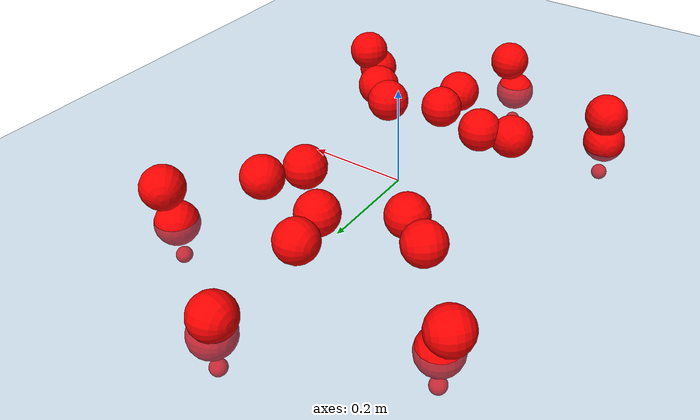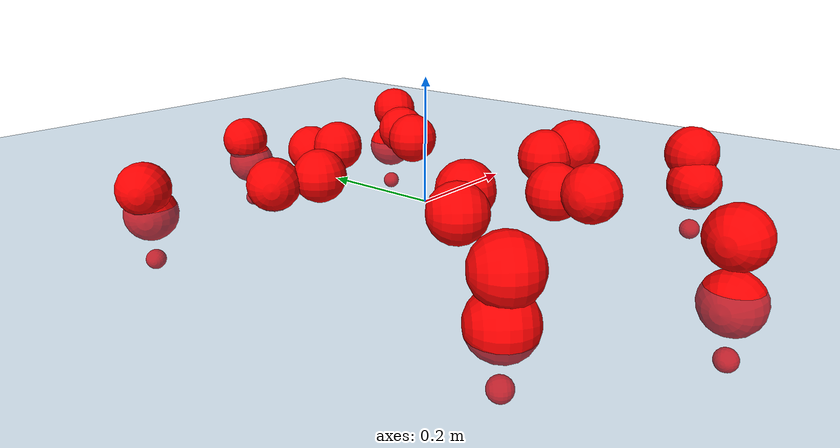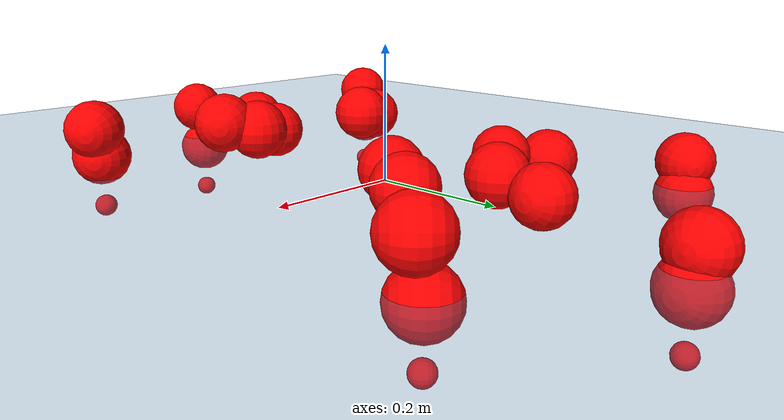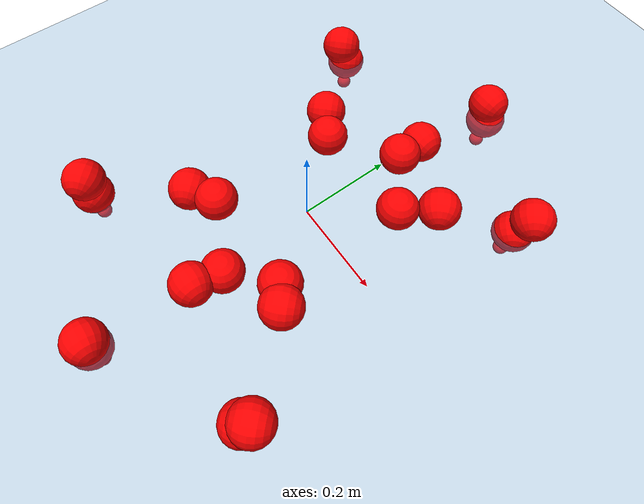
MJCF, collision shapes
<mujoco model="Golem">
  <compiler angle="radian" assetdir="assets" balanceinertia="true" inertiafromgeom="false"/>

  <option timestep="0.005" density="1.2" viscosity="2e-05"/>

  <size nkey="1"/>

  <visual>
    <quality shadowsize="8192"/>
    <map shadowclip="0.5"/>
  </visual>

  <default>
    <default class="/">
      <joint armature="0.01" damping="0.01" frictionloss="0.01"/>
      <geom contype="0" conaffinity="0" group="1" solref="-1000 -80"/>
      <site size="0.01 0.005 0.005" group="5"/>
      <general forcelimited="true" biastype="affine" gainprm="25" biasprm="0 -25 -0.5"/>
      <default class="visual">
        <geom type="mesh" group="2"/>
      </default>
      <default class="collision">
        <geom group="3"/>
      </default>
      <default class="foot">
        <geom size="0.01 0 0" condim="6" group="4" priority="1" solimp="0.015 1 0.01"/>
      </default>
      <default class="reward_collision_sphere">
        <geom group="5" rgba="1 0 0 1"/>
      </default>
    </default>
  </default>

  <asset>
    <texture type="skybox" colorspace="auto" name="//unnamed_texture_0" builtin="gradient" rgb1="0.95 0.95 0.95" rgb2="0.95 0.95 0.95" width="100" height="600"/>
    <texture type="2d" colorspace="auto" name="texplane" builtin="checker" rgb1="0.345 0.575 0.748" rgb2="0.345 0.575 0.748" markrgb="1 1 1" width="512" height="512"/>
    <material name="MatPlane" class="/" texture="texplane" texuniform="true" texrepeat="2 2" specular="0.9"/>
    <mesh name="body" class="/" file="body.stl" scale="0.001 0.001 0.001"/>
    <mesh name="coxa" class="/" file="coxa.stl" scale="0.001 0.001 0.001"/>
    <mesh name="femur" class="/" file="femur.stl" scale="0.001 0.001 0.001"/>
    <mesh name="tibia" class="/" file="tibia.stl" scale="0.001 0.001 0.001"/>
    <mesh name="tarsus" class="/" file="tarsus.stl" scale="0.001 0.001 0.001"/>
  </asset>

  <worldbody>
    <geom name="floor" class="/" size="100 100 0.125" type="plane" group="0" material="MatPlane"/>
    <light name="toplight_shadow" class="/" pos="0 0 5" dir="0.0990148 0.0990148 -0.990148" type="directional" ambient="0.04 0.04 0.04" diffuse="0.55 0.55 0.55" specular="0.12 0.12 0.12"/>
    <light name="toplight_fill" class="/" pos="0 0 5" dir="0.0990148 0.0990148 -0.990148" type="directional" castshadow="false" ambient="0.04 0.04 0.04" diffuse="0.3 0.3 0.3" specular="0.08 0.08 0.08"/>
    <body name="trunk" pos="0.0138814 -0.00205032 0.011946" quat="0.999994 -0.0035337 0.00027969 0.000294546">
      <inertial pos="0.00714203 0.00896358 0.0173906" quat="0.996099 -0.0764351 -0.0231783 0.0375093" mass="5.50336" diaginertia="0.00249407 0.177897 0.00219826"/>
      <joint name="//unnamed_joint_0" type="free"/>
      <geom name="//unnamed_geom_1" class="/" pos="0 0 0.045436" quat="1 0 0 0" type="mesh" rgba="0.9 0.9 0.9 1" mesh="body"/>
      <site name="imu" class="/" pos="0.0373425 0.04828 0.128601" size="0.0107091"/>
      <camera name="track" class="/" pos="0 -3.55929 0" quat="0.707107 0.707107 0 0" mode="trackcom"/>
      <camera name="ego_camera" class="/" pos="0.0940102 0 0.0709937" quat="-0.5 -0.5 0.5 0.5"/>
      <body name="coxa_RR" pos="-0.125062 -0.16257 0.0592011" quat="0.384351 0.000343257 0.000595548 -0.923187">
        <inertial pos="0.00971582 -0.00293122 0.0110615" quat="0.997777 -0.0302376 0.0535892 -0.0256069" mass="0.284119" diaginertia="0.00186323 0.22327 0.00209321"/>
        <joint name="coxa_joint_RR" class="/" pos="0 0 0" axis="-0.0538813 0.031462 -0.998052" stiffness="0.0130471" range="-2.91925 2.78711" armature="0.0172418" damping="0.0374992" frictionloss="0.0174171"/>
        <geom name="//unnamed_geom_2" class="/" type="mesh" rgba="0.2 0.2 0.2 1" mesh="coxa"/>
        <geom name="//unnamed_geom_3" class="reward_collision_sphere" size="0.0428365" pos="-0.0216947 0 0"/>
        <body name="femur_RR" pos="0.0390523 -0.0194399 -0.0117293" quat="0.49767 -0.500916 0.499263 0.50214">
          <inertial pos="0.0103481 -0.0173765 -0.0189315" quat="0.99926 -0.00621325 -0.0373698 -0.00659508" mass="0.244723" diaginertia="0.00152858 0.148256 0.00133423"/>
          <joint name="femur_joint_RR" class="/" pos="0 0 0" axis="0.0259409 0.0370609 -0.998976" stiffness="0.039526" range="-3.28662 3.1685" armature="0.0057588" damping="0" frictionloss="0.000460683"/>
          <geom name="//unnamed_geom_4" class="/" type="mesh" rgba="0.9 0.9 0.9 1" mesh="femur"/>
          <geom name="//unnamed_geom_5" class="reward_collision_sphere" size="0.0428365"/>
          <body name="tibia_RR" pos="-0.0110416 -0.209714 0.0184468" quat="-0.0013585 0.999996 -0.00167039 0.00155952">
            <inertial pos="-0.0122426 0.01795 -0.00476471" quat="0.99957 0.0100612 0.0274606 -0.00228949" mass="0.20505" diaginertia="0.00179394 0.164645 0.00173762"/>
            <joint name="tibia_joint_RR" class="/" pos="0 0 0" axis="-0.00305578 0.00677337 0.999972" range="-3.13083 3.1709" armature="0.00804172" damping="0" frictionloss="0.0178108"/>
            <geom name="//unnamed_geom_6" class="/" type="mesh" rgba="0.2 0.2 0.2 1" mesh="tibia"/>
            <geom name="//unnamed_geom_7" class="reward_collision_sphere" size="0.0428365"/>
            <body name="tarsus_RR" pos="0.0605839 0.00232934 0.00382715" quat="0.999996 0.00212094 0.00063906 0.00195134">
              <inertial pos="0.0563404 -0.00541617 0.00599245" quat="0.493109 0.55082 0.469777 0.482443" mass="0.187914" diaginertia="0.00145358 0.185179 0.00153581"/>
              <joint name="tarsus_joint_RR" class="/" pos="0 0 0" axis="0.0368938 0.0286935 0.998907" range="-2.7628 2.75176" armature="0.00768554" damping="0" frictionloss="0.00851001"/>
              <geom name="//unnamed_geom_8" class="/" type="mesh" rgba="0.9 0.9 0.9 1" mesh="tarsus"/>
              <geom name="foot_1" class="foot" size="0.00529831" pos="0.0809934 0 0" quat="0 -0.707107 0 0.707107"/>
              <geom name="//unnamed_geom_10" class="reward_collision_sphere" size="0.0428365"/>
              <geom name="//unnamed_geom_11" class="reward_collision_sphere" size="0.0160637" pos="0.0777392 0 0"/>
              <site name="foot_1" class="foot" pos="0.0809934 0 0" quat="0 -0.707107 0 0.707107" size="0.0107091"/>
            </body>
          </body>
        </body>
      </body>
      <body name="coxa_RM" pos="0.0177421 -0.235483 0.0391157" quat="0.707731 -0.00235472 -0.00504564 -0.706461">
        <inertial pos="-0.00506967 0.0128413 0.000619972" quat="0.995753 -0.0521614 0.0746084 0.0137419" mass="0.180517" diaginertia="0.00141567 0.171496 0.00152227"/>
        <joint name="coxa_joint_RM" class="/" pos="0 0 0" axis="0.0327258 0.0317086 -0.998961" range="-2.9846 2.99721" armature="0.0093339" damping="0" frictionloss="0.0141136"/>
        <geom name="//unnamed_geom_12" class="/" type="mesh" rgba="0.2 0.2 0.2 1" mesh="coxa"/>
        <geom name="//unnamed_geom_13" class="reward_collision_sphere" size="0.0428365" pos="-0.0216947 0 0"/>
        <body name="femur_RM" pos="0.04009 -0.00764936 0.0102411" quat="0.505327 -0.502523 0.498071 0.494004">
          <inertial pos="0.0177893 0.0124912 0.0192085" quat="0.99954 0.0211113 0.0172537 0.0132967" mass="0.193969" diaginertia="0.00211215 0.179408 0.00153125"/>
          <joint name="femur_joint_RM" class="/" pos="0 0 0" axis="0.027062 -0.0542125 -0.998163" range="-3.30949 2.78992" armature="0.0058012" damping="0.0269922" frictionloss="0.0197266"/>
          <geom name="//unnamed_geom_14" class="/" type="mesh" rgba="0.9 0.9 0.9 1" mesh="femur"/>
          <geom name="//unnamed_geom_15" class="reward_collision_sphere" size="0.0428365"/>
          <body name="tibia_RM" pos="0.0148304 -0.205016 -0.018809" quat="-0.00347328 0.999983 0.002934 0.00366799">
            <inertial pos="-0.00673962 -0.00892015 0.00587777" quat="0.999985 -0.00129988 -0.00259306 0.00456832" mass="0.199523" diaginertia="0.00142134 0.130879 0.00144513"/>
            <joint name="tibia_joint_RM" class="/" pos="0 0 0" axis="0.0849922 0.0228387 0.99612" range="-3.34482 3.46622" armature="0.0138856" damping="0.06794" frictionloss="0.00473903"/>
            <geom name="//unnamed_geom_16" class="/" type="mesh" rgba="0.2 0.2 0.2 1" mesh="tibia"/>
            <geom name="//unnamed_geom_17" class="reward_collision_sphere" size="0.0428365"/>
            <body name="tarsus_RM" pos="0.078128 0.00592208 0.0173341" quat="0.999994 0.00100936 -0.0019928 -0.00246911">
              <inertial pos="0.0518097 -0.002959 -0.0139376" quat="0.517023 0.52435 0.43461 0.518514" mass="0.211512" diaginertia="0.0014509 0.155092 0.00195471"/>
              <joint name="tarsus_joint_RM" class="/" pos="0 0 0" axis="0.0385264 -0.029563 0.99882" stiffness="0.00785993" range="-2.80912 3.50211" armature="0.0115592" damping="0.00561529" frictionloss="0.0152325"/>
              <geom name="//unnamed_geom_18" class="/" type="mesh" rgba="0.9 0.9 0.9 1" mesh="tarsus"/>
              <geom name="foot_2" class="foot" size="0.00693366" pos="0.0809934 0 0" quat="0 -0.707107 0 0.707107"/>
              <geom name="//unnamed_geom_20" class="reward_collision_sphere" size="0.0428365"/>
              <geom name="//unnamed_geom_21" class="reward_collision_sphere" size="0.0160637" pos="0.0777392 0 0"/>
              <site name="foot_2" class="foot" pos="0.0809934 0 0" quat="0 -0.707107 0 0.707107" size="0.0107091"/>
            </body>
          </body>
        </body>
      </body>
      <body name="coxa_RF" pos="0.121989 -0.158868 0.0614062" quat="0.922441 -0.00504452 -0.000974507 -0.386105">
        <inertial pos="-0.0100372 0.0199504 -0.00774624" quat="0.998973 -0.000606392 0.042998 0.0142431" mass="0.229571" diaginertia="0.0018655 0.136157 0.00137214"/>
        <joint name="coxa_joint_RF" class="/" pos="0 0 0" axis="0.0175983 0.0454245 -0.998813" stiffness="0.0387177" range="-3.13587 2.85629" armature="0.0140208" damping="0.0831959" frictionloss="0.0124176"/>
        <geom name="//unnamed_geom_22" class="/" type="mesh" rgba="0.2 0.2 0.2 1" mesh="coxa"/>
        <geom name="//unnamed_geom_23" class="reward_collision_sphere" size="0.0428365" pos="-0.0216947 0 0"/>
        <body name="femur_RF" pos="0.0251147 0.0113371 0.0118254" quat="0.499331 -0.499733 0.501729 0.499203">
          <inertial pos="-0.00670919 0.000564293 -0.015344" quat="0.99903 0.0295108 0.0319563 -0.00685681" mass="0.246214" diaginertia="0.00191124 0.187055 0.0016148"/>
          <joint name="femur_joint_RF" class="/" pos="0 0 0" axis="-0.00878873 0.0176442 -0.999806" range="-3.49007 2.979" armature="0.0100539" damping="0.000906704" frictionloss="0.018548"/>
          <geom name="//unnamed_geom_24" class="/" type="mesh" rgba="0.9 0.9 0.9 1" mesh="femur"/>
          <geom name="//unnamed_geom_25" class="reward_collision_sphere" size="0.0428365"/>
          <body name="tibia_RF" pos="0.0136528 -0.193725 -0.0109913" quat="0.000293294 0.999999 -0.00119803 -0.000867909">
            <inertial pos="-0.0139726 0.0117264 -0.000323639" quat="0.995744 -0.00908674 0.0827514 -0.0395291" mass="0.2205" diaginertia="0.00200962 0.201297 0.00172932"/>
            <joint name="tibia_joint_RF" class="/" pos="0 0 0" axis="0.0617881 0.041913 0.997209" range="-3.15431 3.13831" armature="0.00639308" damping="0" frictionloss="0.0136234"/>
            <geom name="//unnamed_geom_26" class="/" type="mesh" rgba="0.2 0.2 0.2 1" mesh="tibia"/>
            <geom name="//unnamed_geom_27" class="reward_collision_sphere" size="0.0428365"/>
            <body name="tarsus_RF" pos="0.0446488 -0.00121105 0.0199031" quat="0.999981 -0.00483076 0.000648015 -0.00384058">
              <inertial pos="0.0323725 0.0162504 -0.00930832" quat="0.468366 0.503915 0.533888 0.491596" mass="0.290036" diaginertia="0.00183898 0.205141 0.00147621"/>
              <joint name="tarsus_joint_RF" class="/" pos="0 0 0" axis="-0.0319885 -0.0713933 0.996935" stiffness="0.00943006" range="-2.84239 3.13199" armature="0.00998929" damping="0" frictionloss="0.015576"/>
              <geom name="//unnamed_geom_28" class="/" type="mesh" rgba="0.9 0.9 0.9 1" mesh="tarsus"/>
              <geom name="foot_3" class="foot" size="0.00786701" pos="0.0809934 0 0" quat="0 -0.707107 0 0.707107"/>
              <geom name="//unnamed_geom_30" class="reward_collision_sphere" size="0.0428365"/>
              <geom name="//unnamed_geom_31" class="reward_collision_sphere" size="0.0160637" pos="0.0777392 0 0"/>
              <site name="foot_3" class="foot" pos="0.0809934 0 0" quat="0 -0.707107 0 0.707107" size="0.0107091"/>
            </body>
          </body>
        </body>
      </body>
      <body name="coxa_LR" pos="-0.134803 0.148204 0.031262" quat="0.381884 -0.000416754 0.00557543 0.924193">
        <inertial pos="0.00743135 0.00782835 -0.0162079" quat="0.999586 0.00219366 0.0146558 -0.024643" mass="0.239392" diaginertia="0.00168575 0.167088 0.00193821"/>
        <joint name="coxa_joint_LR" class="/" pos="0 0 0" axis="0.0170945 0.0279511 -0.999463" stiffness="0.0745271" range="-2.91043 2.94758" armature="0.0168004" damping="0.00604608" frictionloss="0.0202796"/>
        <geom name="//unnamed_geom_32" class="/" type="mesh" rgba="0.2 0.2 0.2 1" mesh="coxa"/>
        <geom name="//unnamed_geom_33" class="reward_collision_sphere" size="0.0428365" pos="-0.0216947 0 0"/>
        <body name="femur_LR" pos="0.0501077 0.0134646 -0.00773913" quat="0.496623 -0.501539 0.501925 0.499895">
          <inertial pos="-0.0169032 0.0109141 -0.0145634" quat="0.99877 -0.0351358 0.0313195 0.0155927" mass="0.319559" diaginertia="0.00220137 0.181312 0.00202993"/>
          <joint name="femur_joint_LR" class="/" pos="0 0 0" axis="0.0111257 -0.0102529 0.999886" range="-2.76128 3.48791" armature="0.0199455" damping="0" frictionloss="0.00870048"/>
          <geom name="//unnamed_geom_34" class="/" type="mesh" rgba="0.9 0.9 0.9 1" mesh="femur"/>
          <geom name="//unnamed_geom_35" class="reward_collision_sphere" size="0.0428365"/>
          <body name="tibia_LR" pos="0.00139005 -0.201201 -0.00842138" quat="-0.00464735 0.999982 -0.00230086 -0.00295358">
            <inertial pos="-0.0121749 0.0148845 0.00203352" quat="0.999921 -0.00686985 -0.0080583 -0.00672446" mass="0.20918" diaginertia="0.00186712 0.150165 0.00221281"/>
            <joint name="tibia_joint_LR" class="/" pos="0 0 0" axis="0.0643775 0.0519141 -0.996574" stiffness="0.0599368" range="-3.27008 3.46039" armature="0.0157715" damping="0" frictionloss="0.00896496"/>
            <geom name="//unnamed_geom_36" class="/" type="mesh" rgba="0.2 0.2 0.2 1" mesh="tibia"/>
            <geom name="//unnamed_geom_37" class="reward_collision_sphere" size="0.0428365"/>
            <body name="tarsus_LR" pos="0.0454729 -0.00355792 0.0136525" quat="0.999961 0.0005307 -0.00331157 0.00811164">
              <inertial pos="0.0594004 0.0154733 0.00919554" quat="0.499397 0.494743 0.502814 0.503001" mass="0.247196" diaginertia="0.00208749 0.232507 0.00163369"/>
              <joint name="tarsus_joint_LR" class="/" pos="0 0 0" axis="8.3589e-05 0.00126635 -0.999999" stiffness="0.0618722" range="-3.05355 3.04513" armature="0.00501913" damping="0" frictionloss="0.00170889"/>
              <geom name="//unnamed_geom_38" class="/" type="mesh" rgba="0.9 0.9 0.9 1" mesh="tarsus"/>
              <geom name="foot_4" class="foot" size="0.00848441" pos="0.0809934 0 0" quat="0.707107 0 -0.707107 0"/>
              <geom name="//unnamed_geom_40" class="reward_collision_sphere" size="0.0428365"/>
              <geom name="//unnamed_geom_41" class="reward_collision_sphere" size="0.0160637" pos="0.0777392 0 0"/>
              <site name="foot_4" class="foot" pos="0.0809934 0 0" quat="0.707107 0 -0.707107 0" size="0.0107091"/>
            </body>
          </body>
        </body>
      </body>
      <body name="coxa_LM" pos="0.010402 0.245377 0.0409918" quat="0.706341 0.00018738 -0.000632533 0.707872">
        <inertial pos="-0.0165459 0.000793011 -0.00977603" quat="0.998772 0.00201863 -0.0492367 0.0050383" mass="0.296491" diaginertia="0.00180388 0.216827 0.00240616"/>
        <joint name="coxa_joint_LM" class="/" pos="0 0 0" axis="0.0148564 0.00810495 -0.999857" range="-3.26547 3.11387" armature="0.00794069" damping="0.0693201" frictionloss="0.0176657"/>
        <geom name="//unnamed_geom_42" class="/" type="mesh" rgba="0.2 0.2 0.2 1" mesh="coxa"/>
        <geom name="//unnamed_geom_43" class="reward_collision_sphere" size="0.0428365" pos="-0.0216947 0 0"/>
        <body name="femur_LM" pos="0.0433518 0.00446283 -0.0155337" quat="0.499915 -0.500846 0.49915 0.500087">
          <inertial pos="-0.0132285 -0.00266582 0.0121481" quat="0.998889 0.00738837 -0.0419635 -0.0201295" mass="0.227728" diaginertia="0.00203134 0.15744 0.0011845"/>
          <joint name="femur_joint_LM" class="/" pos="0 0 0" axis="0.0576031 0.0700642 0.995878" range="-3.49359 3.36559" armature="0.0143045" damping="0.107733" frictionloss="0.0109631"/>
          <geom name="//unnamed_geom_44" class="/" type="mesh" rgba="0.9 0.9 0.9 1" mesh="femur"/>
          <geom name="//unnamed_geom_45" class="reward_collision_sphere" size="0.0428365"/>
          <body name="tibia_LM" pos="0.0127625 -0.2011 -0.00552191" quat="0.00125445 0.999989 -0.00435042 -0.00101528">
            <inertial pos="0.0177856 0.000407671 0.000318673" quat="0.998882 0.00849934 -0.0420302 0.0199148" mass="0.208123" diaginertia="0.0019047 0.157528 0.00142157"/>
            <joint name="tibia_joint_LM" class="/" pos="0 0 0" axis="0.00213001 0.00249559 -0.999995" range="-3.31825 3.36475" armature="0.0182211" damping="0" frictionloss="0.0212956"/>
            <geom name="//unnamed_geom_46" class="/" type="mesh" rgba="0.2 0.2 0.2 1" mesh="tibia"/>
            <geom name="//unnamed_geom_47" class="reward_collision_sphere" size="0.0428365"/>
            <body name="tarsus_LM" pos="0.0461757 -0.00180301 0.00983737" quat="0.999989 0.00015466 -0.000564669 -0.0047507">
              <inertial pos="0.0587839 0.0032478 0.0132735" quat="0.532792 0.522669 0.430573 0.507501" mass="0.213693" diaginertia="0.00204631 0.176359 0.00185744"/>
              <joint name="tarsus_joint_LM" class="/" pos="0 0 0" axis="-0.00939643 -0.0355842 -0.999323" stiffness="0.0015507" range="-3.4368 3.12102" armature="0.00580104" damping="0" frictionloss="0.00763642"/>
              <geom name="//unnamed_geom_48" class="/" type="mesh" rgba="0.9 0.9 0.9 1" mesh="tarsus"/>
              <geom name="foot_5" class="foot" size="0.00273678" pos="0.0809934 0 0" quat="0.707107 0 -0.707107 0"/>
              <geom name="//unnamed_geom_50" class="reward_collision_sphere" size="0.0428365"/>
              <geom name="//unnamed_geom_51" class="reward_collision_sphere" size="0.0160637" pos="0.0777392 0 0"/>
              <site name="foot_5" class="foot" pos="0.0809934 0 0" quat="0.707107 0 -0.707107 0" size="0.0107091"/>
            </body>
          </body>
        </body>
      </body>
      <body name="coxa_LF" pos="0.124759 0.148024 0.0499523" quat="0.923427 -0.00127355 0.00487372 0.383741">
        <inertial pos="-0.000110748 0.0188251 0.00824713" quat="0.996476 0.0430046 0.0513254 -0.0505183" mass="0.165438" diaginertia="0.00158252 0.148759 0.00149534"/>
        <joint name="coxa_joint_LF" class="/" pos="0 0 0" axis="0.041189 -0.0483004 -0.997983" stiffness="0.0731122" range="-3.43133 3.13463" armature="0.00407703" damping="0" frictionloss="0.0191801"/>
        <geom name="//unnamed_geom_52" class="/" type="mesh" rgba="0.2 0.2 0.2 1" mesh="coxa"/>
        <geom name="//unnamed_geom_53" class="reward_collision_sphere" size="0.0428365" pos="-0.0216947 0 0"/>
        <body name="femur_LF" pos="0.0596909 0.0139052 -0.000588057" quat="0.499597 -0.500884 0.497044 0.502459">
          <inertial pos="-0.00182546 -0.0135218 0.0165723" quat="0.99914 0.00229654 0.0337189 -0.0240124" mass="0.201275" diaginertia="0.00145814 0.154578 0.00179871"/>
          <joint name="femur_joint_LF" class="/" pos="0 0 0" axis="-0.0419998 0.00917237 0.999076" stiffness="0.0864185" range="-2.98197 3.16818" armature="0.00309655" damping="0" frictionloss="0.00902929"/>
          <geom name="//unnamed_geom_54" class="/" type="mesh" rgba="0.9 0.9 0.9 1" mesh="femur"/>
          <geom name="//unnamed_geom_55" class="reward_collision_sphere" size="0.0428365"/>
          <body name="tibia_LF" pos="-0.00679145 -0.179011 0.00127924" quat="0.00123839 0.999997 0.000606424 -0.00189538">
            <inertial pos="-0.0176177 -0.0177078 -0.0193131" quat="0.998836 0.00535807 -0.0450939 -0.0162574" mass="0.23386" diaginertia="0.00175159 0.140921 0.0013001"/>
            <joint name="tibia_joint_LF" class="/" pos="0 0 0" axis="0.0449546 -0.0296309 -0.998549" range="-3.41846 3.49203" armature="0.0149164" damping="0" frictionloss="0.0178708"/>
            <geom name="//unnamed_geom_56" class="/" type="mesh" rgba="0.2 0.2 0.2 1" mesh="tibia"/>
            <geom name="//unnamed_geom_57" class="reward_collision_sphere" size="0.0428365"/>
            <body name="tarsus_LF" pos="0.0763889 -0.0135001 -0.00966982" quat="0.999999 0.00126674 0.000727964 -0.000253293">
              <inertial pos="0.0571612 0.00878926 -0.0176359" quat="0.550684 0.481399 0.445035 0.516669" mass="0.240093" diaginertia="0.0014781 0.163538 0.00129726"/>
              <joint name="tarsus_joint_LF" class="/" pos="0 0 0" axis="-0.0188811 -0.0135131 -0.99973" range="-2.81893 3.49967" armature="0.0034584" damping="0" frictionloss="0.00402963"/>
              <geom name="//unnamed_geom_58" class="/" type="mesh" rgba="0.9 0.9 0.9 1" mesh="tarsus"/>
              <geom name="foot_6" class="foot" size="0.00524587" pos="0.0809934 0 0" quat="0.707107 0 -0.707107 0"/>
              <geom name="//unnamed_geom_60" class="reward_collision_sphere" size="0.0428365"/>
              <geom name="//unnamed_geom_61" class="reward_collision_sphere" size="0.0160637" pos="0.0777392 0 0"/>
              <site name="foot_6" class="foot" pos="0.0809934 0 0" quat="0.707107 0 -0.707107 0" size="0.0107091"/>
            </body>
          </body>
        </body>
      </body>
    </body>
  </worldbody>

  <contact>
    <pair class="/" geom1="floor" geom2="foot_1" name="//unnamed_contact_0"/>
    <pair class="/" geom1="floor" geom2="foot_2" name="//unnamed_contact_1"/>
    <pair class="/" geom1="floor" geom2="foot_3" name="//unnamed_contact_2"/>
    <pair class="/" geom1="floor" geom2="foot_4" name="//unnamed_contact_3"/>
    <pair class="/" geom1="floor" geom2="foot_5" name="//unnamed_contact_4"/>
    <pair class="/" geom1="floor" geom2="foot_6" name="//unnamed_contact_5"/>
  </contact>

  <actuator>
    <general name="coxa_joint_RR" class="/" joint="coxa_joint_RR" forcerange="-10.1811 10.1811" gainprm="13.9895" biasprm="0 -13.9895 -0.48122"/>
    <general name="femur_joint_RR" class="/" joint="femur_joint_RR" forcerange="-6.80121 6.80121" gainprm="13.9895" biasprm="0 -13.9895 -0.48122"/>
    <general name="tibia_joint_RR" class="/" joint="tibia_joint_RR" forcerange="-7.45371 7.45371" gainprm="13.9895" biasprm="0 -13.9895 -0.48122"/>
    <general name="tarsus_joint_RR" class="/" joint="tarsus_joint_RR" forcerange="-6.18684 6.18684" gainprm="13.9895" biasprm="0 -13.9895 -0.48122"/>
    <general name="coxa_joint_RM" class="/" joint="coxa_joint_RM" forcerange="-9.41044 9.41044" gainprm="13.9895" biasprm="0 -13.9895 -0.48122"/>
    <general name="femur_joint_RM" class="/" joint="femur_joint_RM" forcerange="-6.79299 6.79299" gainprm="13.9895" biasprm="0 -13.9895 -0.48122"/>
    <general name="tibia_joint_RM" class="/" joint="tibia_joint_RM" forcerange="-8.3668 8.3668" gainprm="13.9895" biasprm="0 -13.9895 -0.48122"/>
    <general name="tarsus_joint_RM" class="/" joint="tarsus_joint_RM" forcerange="-12.167 12.167" gainprm="13.9895" biasprm="0 -13.9895 -0.48122"/>
    <general name="coxa_joint_RF" class="/" joint="coxa_joint_RF" forcerange="-9.37252 9.37252" gainprm="13.9895" biasprm="0 -13.9895 -0.48122"/>
    <general name="femur_joint_RF" class="/" joint="femur_joint_RF" forcerange="-8.04827 8.04827" gainprm="13.9895" biasprm="0 -13.9895 -0.48122"/>
    <general name="tibia_joint_RF" class="/" joint="tibia_joint_RF" forcerange="-7.37976 7.37976" gainprm="13.9895" biasprm="0 -13.9895 -0.48122"/>
    <general name="tarsus_joint_RF" class="/" joint="tarsus_joint_RF" forcerange="-10.2841 10.2841" gainprm="13.9895" biasprm="0 -13.9895 -0.48122"/>
    <general name="coxa_joint_LR" class="/" joint="coxa_joint_LR" forcerange="-10.6944 10.6944" gainprm="13.9895" biasprm="0 -13.9895 -0.48122"/>
    <general name="femur_joint_LR" class="/" joint="femur_joint_LR" forcerange="-12.5637 12.5637" gainprm="13.9895" biasprm="0 -13.9895 -0.48122"/>
    <general name="tibia_joint_LR" class="/" joint="tibia_joint_LR" forcerange="-5.78601 5.78601" gainprm="13.9895" biasprm="0 -13.9895 -0.48122"/>
    <general name="tarsus_joint_LR" class="/" joint="tarsus_joint_LR" forcerange="-7.45461 7.45461" gainprm="13.9895" biasprm="0 -13.9895 -0.48122"/>
    <general name="coxa_joint_LM" class="/" joint="coxa_joint_LM" forcerange="-8.9152 8.9152" gainprm="13.9895" biasprm="0 -13.9895 -0.48122"/>
    <general name="femur_joint_LM" class="/" joint="femur_joint_LM" forcerange="-11.1976 11.1976" gainprm="13.9895" biasprm="0 -13.9895 -0.48122"/>
    <general name="tibia_joint_LM" class="/" joint="tibia_joint_LM" forcerange="-7.99454 7.99454" gainprm="13.9895" biasprm="0 -13.9895 -0.48122"/>
    <general name="tarsus_joint_LM" class="/" joint="tarsus_joint_LM" forcerange="-4.09688 4.09688" gainprm="13.9895" biasprm="0 -13.9895 -0.48122"/>
    <general name="coxa_joint_LF" class="/" joint="coxa_joint_LF" forcerange="-10.5372 10.5372" gainprm="13.9895" biasprm="0 -13.9895 -0.48122"/>
    <general name="femur_joint_LF" class="/" joint="femur_joint_LF" forcerange="-3.57805 3.57805" gainprm="13.9895" biasprm="0 -13.9895 -0.48122"/>
    <general name="tibia_joint_LF" class="/" joint="tibia_joint_LF" forcerange="-7.79004 7.79004" gainprm="13.9895" biasprm="0 -13.9895 -0.48122"/>
    <general name="tarsus_joint_LF" class="/" joint="tarsus_joint_LF" forcerange="-13.5705 13.5705" gainprm="13.9895" biasprm="0 -13.9895 -0.48122"/>
  </actuator>

  <sensor>
    <gyro site="imu" name="imu_angular_velocity"/>
    <velocimeter site="imu" name="imu_linear_velocity"/>
    <framelinvel objtype="site" objname="foot_1" name="foot_1_global_linear_velocity"/>
    <framelinvel objtype="site" objname="foot_2" name="foot_2_global_linear_velocity"/>
    <framelinvel objtype="site" objname="foot_3" name="foot_3_global_linear_velocity"/>
    <framelinvel objtype="site" objname="foot_4" name="foot_4_global_linear_velocity"/>
    <framelinvel objtype="site" objname="foot_5" name="foot_5_global_linear_velocity"/>
    <framelinvel objtype="site" objname="foot_6" name="foot_6_global_linear_velocity"/>
  </sensor>

  <keyframe>
    <key name="home" qpos="0 0 0.1457 1 0 0 0 0 0 0 0 0 0 0 0 0 0 0 0 0 0 0 0 0 0 0 0 0 0 0 0"/>
  </keyframe>
</mujoco>
